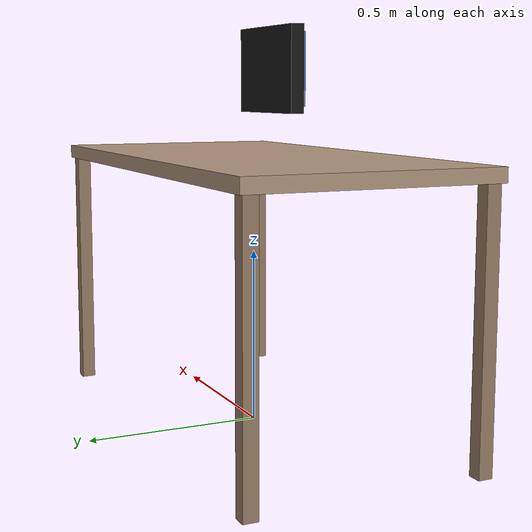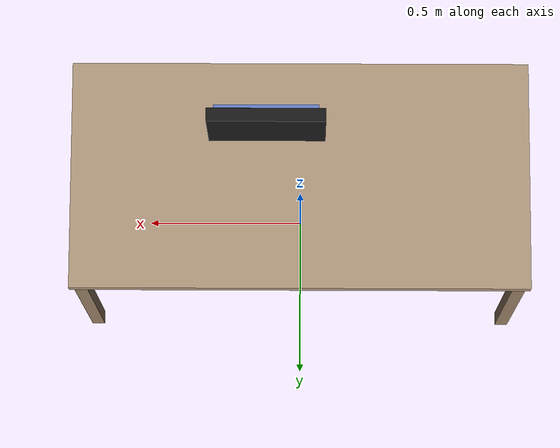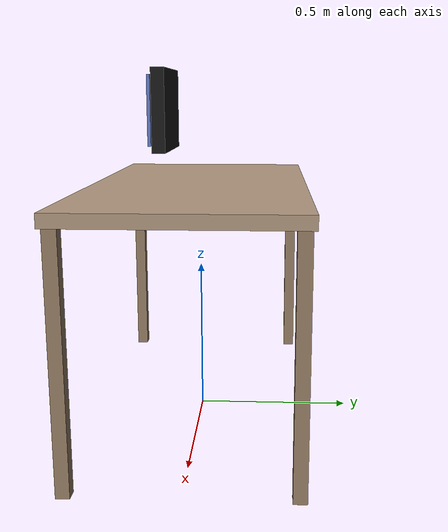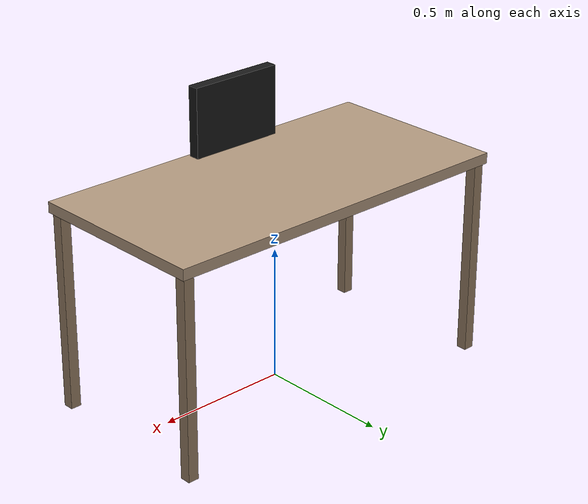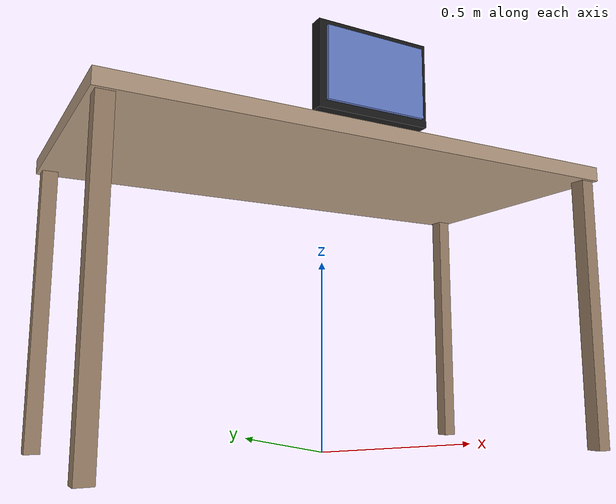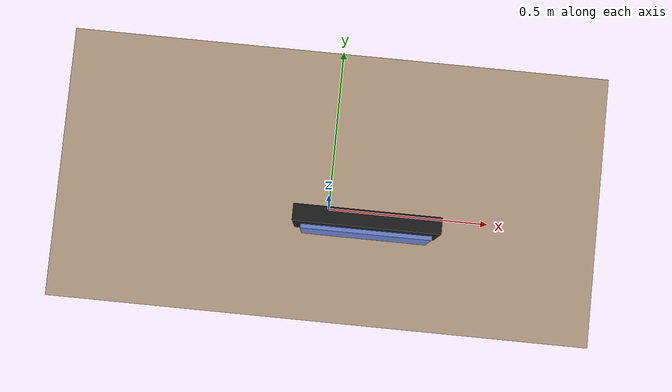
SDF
<?xml version="1.0"?>
<sdf version="1.6">
  <model name="office_desk">
    <static>true</static>
    <link name="top">
      <pose>0 0 0.76 0 0 0</pose>
      <collision name="c"><geometry><box><size>1.4 0.7 0.04</size></box></geometry></collision>
      <visual name="v">
        <geometry><box><size>1.4 0.7 0.04</size></box></geometry>
        <material><ambient>0.7 0.6 0.5 1</ambient><diffuse>0.7 0.6 0.5 1</diffuse></material>
      </visual>
    </link>
    <!-- Panel sides -->
    <link name="side_l"><pose>0.67 0.32 0.38 0 0 0</pose>
      <collision name="c"><geometry><box><size>0.04 0.04 0.76</size></box></geometry></collision>
      <visual name="v"><geometry><box><size>0.04 0.04 0.76</size></box></geometry>
        <material><ambient>0.6 0.5 0.4 1</ambient><diffuse>0.6 0.5 0.4 1</diffuse></material></visual>
    </link>
    <link name="side_r"><pose>0.67 -0.32 0.38 0 0 0</pose>
      <collision name="c"><geometry><box><size>0.04 0.04 0.76</size></box></geometry></collision>
      <visual name="v"><geometry><box><size>0.04 0.04 0.76</size></box></geometry>
        <material><ambient>0.6 0.5 0.4 1</ambient><diffuse>0.6 0.5 0.4 1</diffuse></material></visual>
    </link>
    <link name="side_bl"><pose>-0.67 0.32 0.38 0 0 0</pose>
      <collision name="c"><geometry><box><size>0.04 0.04 0.76</size></box></geometry></collision>
      <visual name="v"><geometry><box><size>0.04 0.04 0.76</size></box></geometry>
        <material><ambient>0.6 0.5 0.4 1</ambient><diffuse>0.6 0.5 0.4 1</diffuse></material></visual>
    </link>
    <link name="side_br"><pose>-0.67 -0.32 0.38 0 0 0</pose>
      <collision name="c"><geometry><box><size>0.04 0.04 0.76</size></box></geometry></collision>
      <visual name="v"><geometry><box><size>0.04 0.04 0.76</size></box></geometry>
        <material><ambient>0.6 0.5 0.4 1</ambient><diffuse>0.6 0.5 0.4 1</diffuse></material></visual>
    </link>
    <!-- Monitor -->
    <link name="monitor">
      <pose>0.1 -0.1 1.02 0 0 0</pose>
      <collision name="c"><geometry><box><size>0.35 0.04 0.25</size></box></geometry></collision>
      <visual name="v">
        <geometry><box><size>0.35 0.04 0.25</size></box></geometry>
        <material><ambient>0.1 0.1 0.1 1</ambient><diffuse>0.1 0.1 0.1 1</diffuse></material>
      </visual>
    </link>
    <link name="screen">
      <pose>0.1 -0.13 1.02 0 0 0</pose>
      <visual name="v"><geometry><box><size>0.31 0.01 0.21</size></box></geometry>
        <material><ambient>0.5 0.6 0.8 1</ambient><diffuse>0.4 0.5 0.8 1</diffuse>
          <emissive>0.15 0.25 0.5 1</emissive></material></visual>
    </link>
  </model>
</sdf>
